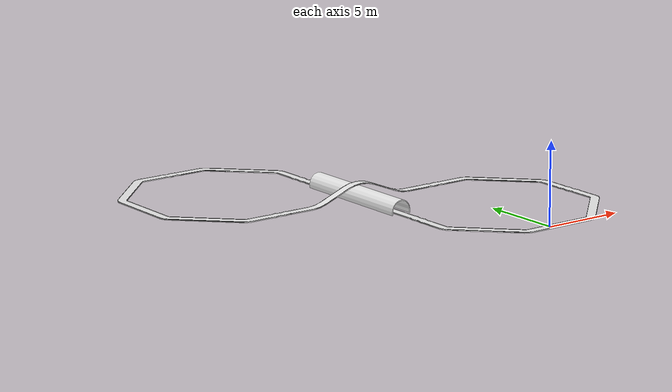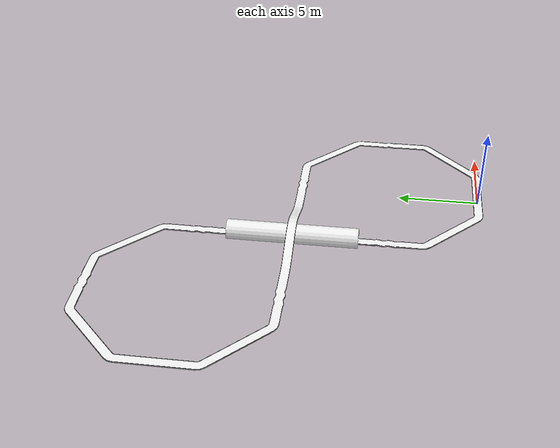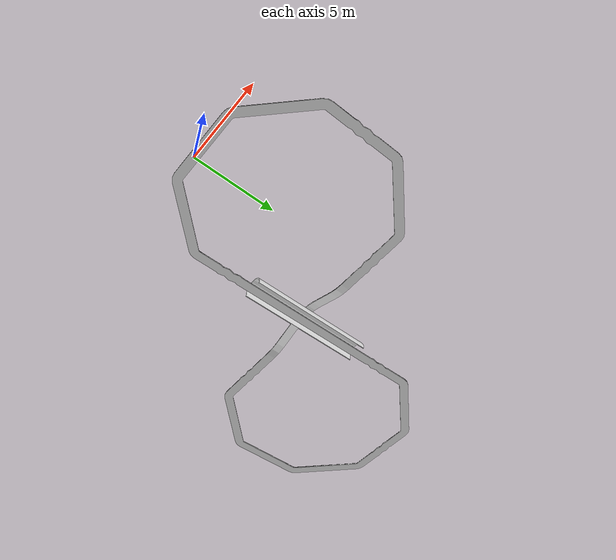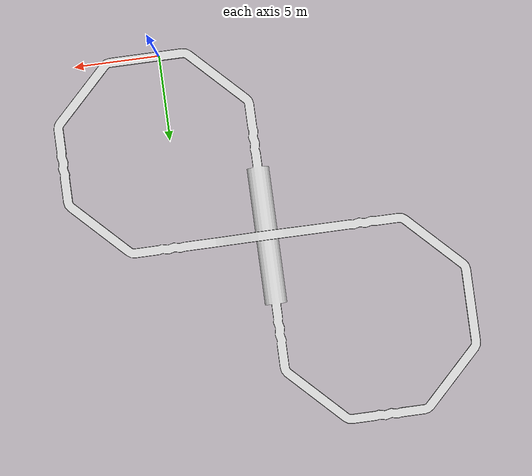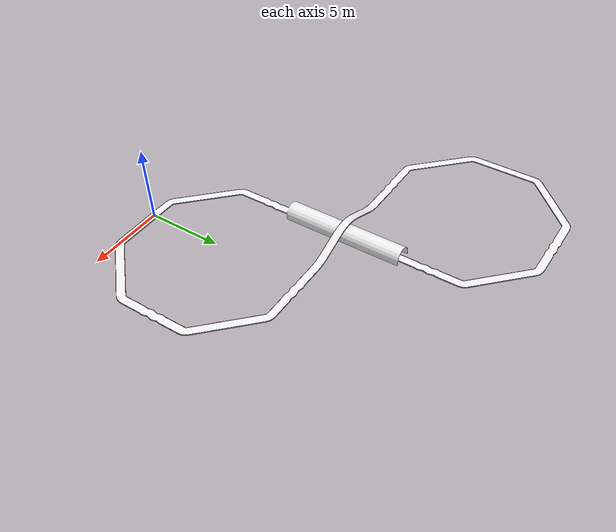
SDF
<?xml version="1.0" ?>
<sdf version="1.6">
    <model name='nxp_raceway_overpass'>
    <pose>0 0 0 0 0 0</pose>
    <link name='nxp_raceway_overpass_link'>
      <collision name='nxp_raceway_overpass_collision'>
        <pose>-16.5 -0.275 -.04 0 0 0</pose>
        <geometry>
          <mesh>
            <scale>1 1 1</scale>
            <uri>model://nxp_raceway_overpass/meshes/InfiniteOverpassInsideTunnel.stl</uri>
          </mesh>
        </geometry>
      </collision>
      <visual name='nxp_raceway_overpass_inside_visual'>
        <cast_shadows>0</cast_shadows>
        <pose>-16.5 -0.275 -.04 0 0 0</pose>
        <geometry>
          <mesh>
            <scale>1 1 1</scale>
            <uri>model://nxp_raceway_overpass/meshes/InfiniteOverpassInsideTunnel.stl</uri>
          </mesh>
        </geometry>
        <material>
          <script>
            <name>Gazebo/White</name>
            <uri>file://media/materials/scripts/gazebo.material</uri>
          </script>
        </material>
      </visual>
      <visual name='nxp_raceway_overpass_border_visual'>
        <cast_shadows>0</cast_shadows>
        <pose>-16.5 -0.275 -.02 0 0 0</pose>
        <geometry>
          <mesh>
            <scale>1 1 1</scale>
            <uri>model://nxp_raceway_overpass/meshes/InfiniteOverpassBorder.stl</uri>
          </mesh>
        </geometry>
        <material>
          <script>
            <name>Gazebo/Black</name>
            <uri>file://media/materials/scripts/gazebo.material</uri>
          </script>
        </material>
      </visual>
    </link>
    <static>1</static>
  </model>
</sdf>
